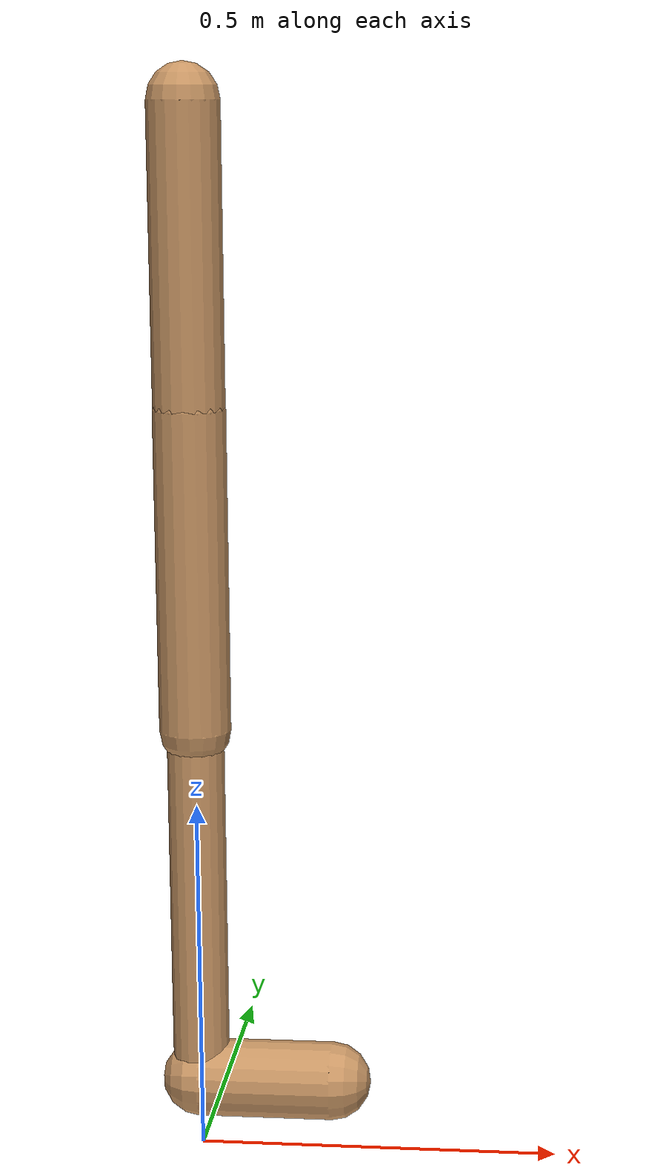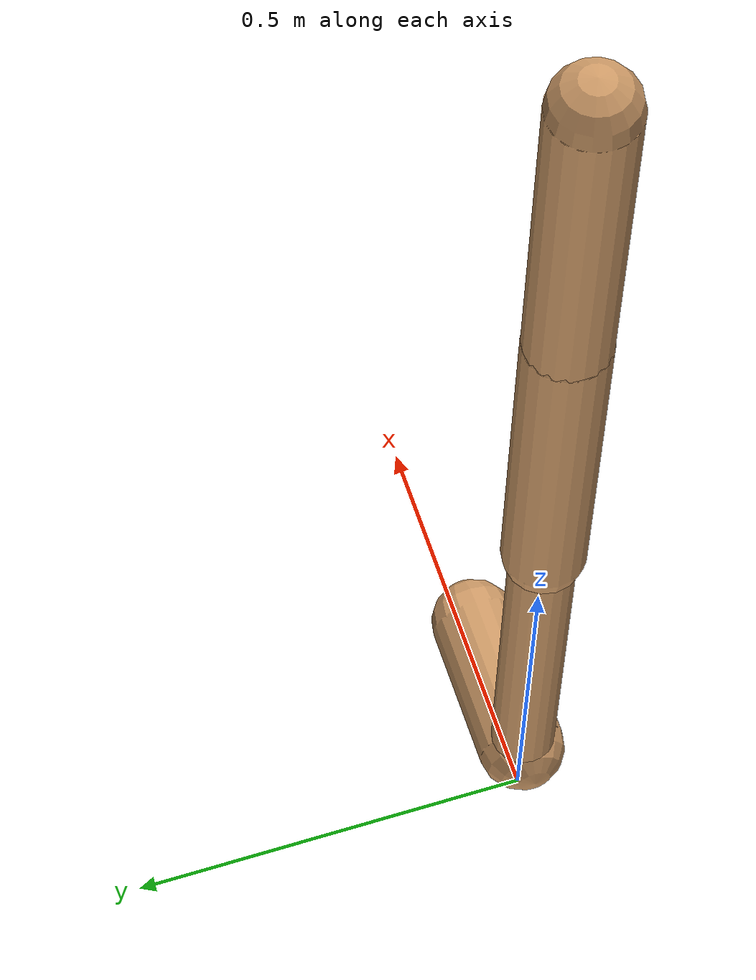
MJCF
<mujoco model="walker2d">
  <compiler angle="degree" coordinate="global" inertiafromgeom="true" />
  <default>
    <joint armature="0.01" damping=".1" limited="true" />
    <geom conaffinity="0" condim="3" contype="1" density="1000" friction="0.8 .1 .1" rgba="0.8 0.6 .4 1" />
  </default>
  <option integrator="RK4" timestep="0.002" />
  <worldbody>

    <body name="torso" pos="0 0 -0.020904962790759554">
      <joint armature="0" axis="1 0 0" damping="0" limited="false" name="ignorex" pos="0 0 0" stiffness="0" type="slide" />
      <joint armature="0" axis="0 0 1" damping="0" limited="false" name="ignorez" pos="0 0 0" ref="1.25" stiffness="0" type="slide" />
      <joint armature="0" axis="0 1 0" damping="0" limited="false" name="ignorey" pos="0 0 0" stiffness="0" type="hinge" />
      <geom fromto="0 0 1.45 0 0 1.05" name="torso_geom" size="0.04871460643336183" type="capsule" />
      <body name="thigh">
        <joint axis="0 -1 0" name="thigh_joint" pos="0 0 1.05" range="-150 0" type="hinge" />
        <geom fromto="0.0 0.0 1.05 0.0 0.0 0.6099023507956229" name="thigh_geom" size="0.049275459750398716" type="capsule" />
        <body name="leg" pos="0.0 0.0 0.00990235079562296">
          <joint axis="0 -1 0" name="leg_joint" pos="0 0 0.6" range="-150 0" type="hinge" />
          <geom fromto="0.0 0.0 0.6 0.0 0.0 0.11100261199513661" name="leg_geom" size="0.039420367800318976" type="capsule" />
          <body name="foot" pos="0.0 0.0 0.011002611995136607">
            <joint axis="0 -1 0" name="foot_joint" pos="0 0 0.1" range="-45 45" type="hinge" />
            <geom fromto="0.0 0.0 0.1 0.185006711059188 0.0 0.1" name="foot_geom" size="0.05447893782431747" type="capsule" />
          </body>
        </body>
      </body>

      <body name="thigh_left">
        <joint axis="0 -1 0" name="thigh_left_joint" pos="0 0 1.05" range="-150 0" type="hinge" />
        <geom fromto="0.0 0.0 1.05 0.0 0.0 0.6099023507956229" name="thigh_left_geom" rgba=".7 .3 .6 1" size="0.049275459750398716" type="capsule" />
        <body name="leg_left" pos="0.0 0.0 0.00990235079562296">
          <joint axis="0 -1 0" name="leg_left_joint" pos="0 0 0.6" range="-150 0" type="hinge" />
          <geom fromto="0.0 0.0 0.6 0.0 0.0 0.11100261199513661" name="leg_left_geom" rgba=".7 .3 .6 1" size="0.039420367800318976" type="capsule" />
          <body name="foot_left" pos="0.0 0.0 0.011002611995136607">
            <joint axis="0 -1 0" name="foot_left_joint" pos="0 0 0.1" range="-45 45" type="hinge" />
            <geom fromto="0.0 0.0 0.1 0.185006711059188 0.0 0.1" name="foot_left_geom" rgba=".7 .3 .6 1" size="0.05447893782431747" type="capsule" />
          </body>
        </body>
      </body>
    </body>
  </worldbody>
  <actuator>

    <motor ctrllimited="true" ctrlrange="-1.0 1.0" gear="100" joint="thigh_joint" />
    <motor ctrllimited="true" ctrlrange="-1.0 1.0" gear="100" joint="leg_joint" />
    <motor ctrllimited="true" ctrlrange="-1.0 1.0" gear="100" joint="foot_joint" />
    <motor ctrllimited="true" ctrlrange="-1.0 1.0" gear="100" joint="thigh_left_joint" />
    <motor ctrllimited="true" ctrlrange="-1.0 1.0" gear="100" joint="leg_left_joint" />
    <motor ctrllimited="true" ctrlrange="-1.0 1.0" gear="100" joint="foot_left_joint" />

  </actuator>
</mujoco>
